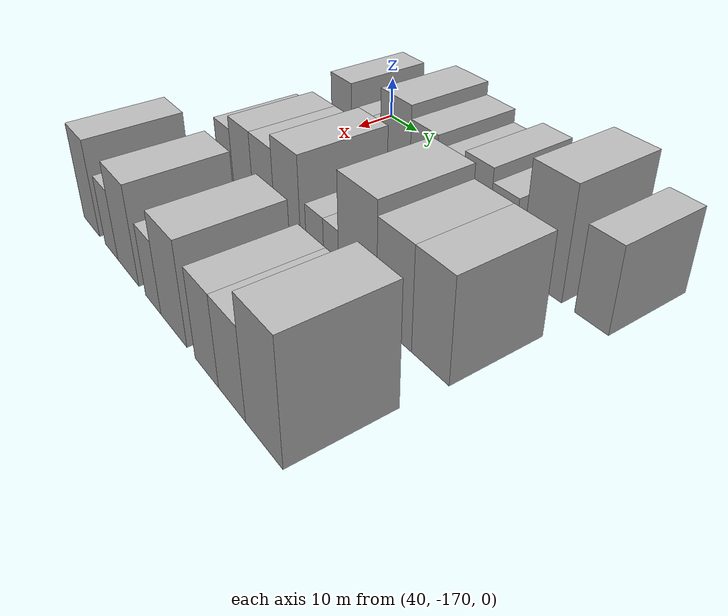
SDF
<sdf version="1.6">
 <world name="default">
  <model name="building_19">
   <static>1</static>
   <pose>50.0000 -162.3650 0 0.000000 0.000000 0.000000</pose>
   <link name="link">
    <pose>0 0 9.00 0 0 0</pose>
    <collision name="collision"><geometry><box><size>20.0000 7.9368 18.0000</size></box></geometry></collision>
    <visual name="visual">
     <cast_shadows>0</cast_shadows>
     <geometry><box><size>20.0000 7.9368 18.0000</size></box></geometry>
     <material>
      <script>
       <uri>model://HANNAS_wall/materials/scripts</uri>
       <uri>model://HANNAS_wall/materials/textures</uri>
       <name>vrc/HANNAS_wall</name>
      </script>
     </material>
    </visual>
   </link>
  </model>
  <model name="building_20">
   <static>1</static>
   <pose>50.0000 -155.6761 0 0.000000 0.000000 0.000000</pose>
   <link name="link">
    <pose>0 0 6.00 0 0 0</pose>
    <collision name="collision"><geometry><box><size>20.0000 5.4409 12.0000</size></box></geometry></collision>
    <visual name="visual">
     <cast_shadows>0</cast_shadows>
     <geometry><box><size>20.0000 5.4409 12.0000</size></box></geometry>
     <material>
      <script>
       <uri>model://HANNAS_wall/materials/scripts</uri>
       <uri>model://HANNAS_wall/materials/textures</uri>
       <name>vrc/HANNAS_wall</name>
      </script>
     </material>
    </visual>
   </link>
  </model>
  <model name="building_21">
   <static>1</static>
   <pose>50.0000 -150.2887 0 0.000000 0.000000 0.000000</pose>
   <link name="link">
    <pose>0 0 6.00 0 0 0</pose>
    <collision name="collision"><geometry><box><size>20.0000 5.3338 12.0000</size></box></geometry></collision>
    <visual name="visual">
     <cast_shadows>0</cast_shadows>
     <geometry><box><size>20.0000 5.3338 12.0000</size></box></geometry>
     <material>
      <script>
       <uri>model://HANNAS_wall/materials/scripts</uri>
       <uri>model://HANNAS_wall/materials/textures</uri>
       <name>vrc/HANNAS_wall</name>
      </script>
     </material>
    </visual>
   </link>
  </model>
  <model name="building_22">
   <static>1</static>
   <pose>50.0000 -142.4901 0 0.000000 0.000000 0.000000</pose>
   <link name="link">
    <pose>0 0 10.50 0 0 0</pose>
    <collision name="collision"><geometry><box><size>20.0000 10.2634 21.0000</size></box></geometry></collision>
    <visual name="visual">
     <cast_shadows>0</cast_shadows>
     <geometry><box><size>20.0000 10.2634 21.0000</size></box></geometry>
     <material>
      <script>
       <uri>model://HANNAS_wall/materials/scripts</uri>
       <uri>model://HANNAS_wall/materials/textures</uri>
       <name>vrc/HANNAS_wall</name>
      </script>
     </material>
    </visual>
   </link>
  </model>
  <model name="building_23">
   <static>1</static>
   <pose>50.0000 -133.1389 0 0.000000 0.000000 0.000000</pose>
   <link name="link">
    <pose>0 0 9.00 0 0 0</pose>
    <collision name="collision"><geometry><box><size>20.0000 8.4390 18.0000</size></box></geometry></collision>
    <visual name="visual">
     <cast_shadows>0</cast_shadows>
     <geometry><box><size>20.0000 8.4390 18.0000</size></box></geometry>
     <material>
      <script>
       <uri>model://HANNAS_wall/materials/scripts</uri>
       <uri>model://HANNAS_wall/materials/textures</uri>
       <name>vrc/HANNAS_wall</name>
      </script>
     </material>
    </visual>
   </link>
  </model>
  <model name="building_24">
   <static>1</static>
   <pose>50.0000 -125.5603 0 0.000000 0.000000 0.000000</pose>
   <link name="link">
    <pose>0 0 7.50 0 0 0</pose>
    <collision name="collision"><geometry><box><size>20.0000 6.7183 15.0000</size></box></geometry></collision>
    <visual name="visual">
     <cast_shadows>0</cast_shadows>
     <geometry><box><size>20.0000 6.7183 15.0000</size></box></geometry>
     <material>
      <script>
       <uri>model://HANNAS_wall/materials/scripts</uri>
       <uri>model://HANNAS_wall/materials/textures</uri>
       <name>vrc/HANNAS_wall</name>
      </script>
     </material>
    </visual>
   </link>
  </model>
  <model name="building_25">
   <static>1</static>
   <pose>50.0000 -117.3013 0 0.000000 0.000000 0.000000</pose>
   <link name="link">
    <pose>0 0 9.00 0 0 0</pose>
    <collision name="collision"><geometry><box><size>20.0000 7.7996 18.0000</size></box></geometry></collision>
    <visual name="visual">
     <cast_shadows>0</cast_shadows>
     <geometry><box><size>20.0000 7.7996 18.0000</size></box></geometry>
     <material>
      <script>
       <uri>model://HANNAS_wall/materials/scripts</uri>
       <uri>model://HANNAS_wall/materials/textures</uri>
       <name>vrc/HANNAS_wall</name>
      </script>
     </material>
    </visual>
   </link>
  </model>
  <model name="building_26">
   <static>1</static>
   <pose>50.0000 -109.9660 0 0.000000 0.000000 0.000000</pose>
   <link name="link">
    <pose>0 0 7.50 0 0 0</pose>
    <collision name="collision"><geometry><box><size>20.0000 6.8709 15.0000</size></box></geometry></collision>
    <visual name="visual">
     <cast_shadows>0</cast_shadows>
     <geometry><box><size>20.0000 6.8709 15.0000</size></box></geometry>
     <material>
      <script>
       <uri>model://HANNAS_wall/materials/scripts</uri>
       <uri>model://HANNAS_wall/materials/textures</uri>
       <name>vrc/HANNAS_wall</name>
      </script>
     </material>
    </visual>
   </link>
  </model>
  <model name="building_27">
   <static>1</static>
   <pose>50.0000 -99.3671 0 0.000000 0.000000 0.000000</pose>
   <link name="link">
    <pose>0 0 12.00 0 0 0</pose>
    <collision name="collision"><geometry><box><size>20.0000 10.3270 24.0000</size></box></geometry></collision>
    <visual name="visual">
     <cast_shadows>0</cast_shadows>
     <geometry><box><size>20.0000 10.3270 24.0000</size></box></geometry>
     <material>
      <script>
       <uri>model://HANNAS_wall/materials/scripts</uri>
       <uri>model://HANNAS_wall/materials/textures</uri>
       <name>vrc/HANNAS_wall</name>
      </script>
     </material>
    </visual>
   </link>
  </model>
  <model name="building_28">
   <static>1</static>
   <pose>50.0000 -87.4475 0 0.000000 0.000000 0.000000</pose>
   <link name="link">
    <pose>0 0 9.00 0 0 0</pose>
    <collision name="collision"><geometry><box><size>20.0000 7.5122 18.0000</size></box></geometry></collision>
    <visual name="visual">
     <cast_shadows>0</cast_shadows>
     <geometry><box><size>20.0000 7.5122 18.0000</size></box></geometry>
     <material>
      <script>
       <uri>model://HANNAS_wall/materials/scripts</uri>
       <uri>model://HANNAS_wall/materials/textures</uri>
       <name>vrc/HANNAS_wall</name>
      </script>
     </material>
    </visual>
   </link>
  </model>
  <model name="building_96">
   <static>1</static>
   <pose>79.0000 -163.0501 0 0.000000 0.000000 0.000000</pose>
   <link name="link">
    <pose>0 0 7.50 0 0 0</pose>
    <collision name="collision"><geometry><box><size>20.0000 6.7012 15.0000</size></box></geometry></collision>
    <visual name="visual">
     <cast_shadows>0</cast_shadows>
     <geometry><box><size>20.0000 6.7012 15.0000</size></box></geometry>
     <material>
      <script>
       <uri>model://HANNAS_wall/materials/scripts</uri>
       <uri>model://HANNAS_wall/materials/textures</uri>
       <name>vrc/HANNAS_wall</name>
      </script>
     </material>
    </visual>
   </link>
  </model>
  <model name="building_97">
   <static>1</static>
   <pose>79.0000 -155.4418 0 0.000000 0.000000 0.000000</pose>
   <link name="link">
    <pose>0 0 9.00 0 0 0</pose>
    <collision name="collision"><geometry><box><size>20.0000 8.5153 18.0000</size></box></geometry></collision>
    <visual name="visual">
     <cast_shadows>0</cast_shadows>
     <geometry><box><size>20.0000 8.5153 18.0000</size></box></geometry>
     <material>
      <script>
       <uri>model://HANNAS_wall/materials/scripts</uri>
       <uri>model://HANNAS_wall/materials/textures</uri>
       <name>vrc/HANNAS_wall</name>
      </script>
     </material>
    </visual>
   </link>
  </model>
  <model name="building_98">
   <static>1</static>
   <pose>79.0000 -146.8938 0 0.000000 0.000000 0.000000</pose>
   <link name="link">
    <pose>0 0 9.00 0 0 0</pose>
    <collision name="collision"><geometry><box><size>20.0000 8.5806 18.0000</size></box></geometry></collision>
    <visual name="visual">
     <cast_shadows>0</cast_shadows>
     <geometry><box><size>20.0000 8.5806 18.0000</size></box></geometry>
     <material>
      <script>
       <uri>model://HANNAS_wall/materials/scripts</uri>
       <uri>model://HANNAS_wall/materials/textures</uri>
       <name>vrc/HANNAS_wall</name>
      </script>
     </material>
    </visual>
   </link>
  </model>
  <model name="building_99">
   <static>1</static>
   <pose>79.0000 -137.8157 0 0.000000 0.000000 0.000000</pose>
   <link name="link">
    <pose>0 0 10.50 0 0 0</pose>
    <collision name="collision"><geometry><box><size>20.0000 9.5756 21.0000</size></box></geometry></collision>
    <visual name="visual">
     <cast_shadows>0</cast_shadows>
     <geometry><box><size>20.0000 9.5756 21.0000</size></box></geometry>
     <material>
      <script>
       <uri>model://HANNAS_wall/materials/scripts</uri>
       <uri>model://HANNAS_wall/materials/textures</uri>
       <name>vrc/HANNAS_wall</name>
      </script>
     </material>
    </visual>
   </link>
  </model>
  <model name="building_100">
   <static>1</static>
   <pose>79.0000 -128.0431 0 0.000000 0.000000 0.000000</pose>
   <link name="link">
    <pose>0 0 6.00 0 0 0</pose>
    <collision name="collision"><geometry><box><size>20.0000 5.9696 12.0000</size></box></geometry></collision>
    <visual name="visual">
     <cast_shadows>0</cast_shadows>
     <geometry><box><size>20.0000 5.9696 12.0000</size></box></geometry>
     <material>
      <script>
       <uri>model://HANNAS_wall/materials/scripts</uri>
       <uri>model://HANNAS_wall/materials/textures</uri>
       <name>vrc/HANNAS_wall</name>
      </script>
     </material>
    </visual>
   </link>
  </model>
  <model name="building_101">
   <static>1</static>
   <pose>79.0000 -122.6433 0 0.000000 0.000000 0.000000</pose>
   <link name="link">
    <pose>0 0 6.00 0 0 0</pose>
    <collision name="collision"><geometry><box><size>20.0000 4.8300 12.0000</size></box></geometry></collision>
    <visual name="visual">
     <cast_shadows>0</cast_shadows>
     <geometry><box><size>20.0000 4.8300 12.0000</size></box></geometry>
     <material>
      <script>
       <uri>model://HANNAS_wall/materials/scripts</uri>
       <uri>model://HANNAS_wall/materials/textures</uri>
       <name>vrc/HANNAS_wall</name>
      </script>
     </material>
    </visual>
   </link>
  </model>
  <model name="building_102">
   <static>1</static>
   <pose>79.0000 -114.5155 0 0.000000 0.000000 0.000000</pose>
   <link name="link">
    <pose>0 0 12.00 0 0 0</pose>
    <collision name="collision"><geometry><box><size>20.0000 11.4256 24.0000</size></box></geometry></collision>
    <visual name="visual">
     <cast_shadows>0</cast_shadows>
     <geometry><box><size>20.0000 11.4256 24.0000</size></box></geometry>
     <material>
      <script>
       <uri>model://HANNAS_wall/materials/scripts</uri>
       <uri>model://HANNAS_wall/materials/textures</uri>
       <name>vrc/HANNAS_wall</name>
      </script>
     </material>
    </visual>
   </link>
  </model>
  <model name="building_103">
   <static>1</static>
   <pose>79.0000 -104.0372 0 0.000000 0.000000 0.000000</pose>
   <link name="link">
    <pose>0 0 10.50 0 0 0</pose>
    <collision name="collision"><geometry><box><size>20.0000 9.5311 21.0000</size></box></geometry></collision>
    <visual name="visual">
     <cast_shadows>0</cast_shadows>
     <geometry><box><size>20.0000 9.5311 21.0000</size></box></geometry>
     <material>
      <script>
       <uri>model://HANNAS_wall/materials/scripts</uri>
       <uri>model://HANNAS_wall/materials/textures</uri>
       <name>vrc/HANNAS_wall</name>
      </script>
     </material>
    </visual>
   </link>
  </model>
  <model name="building_104">
   <static>1</static>
   <pose>79.0000 -94.5665 0 0.000000 0.000000 0.000000</pose>
   <link name="link">
    <pose>0 0 10.50 0 0 0</pose>
    <collision name="collision"><geometry><box><size>20.0000 9.4101 21.0000</size></box></geometry></collision>
    <visual name="visual">
     <cast_shadows>0</cast_shadows>
     <geometry><box><size>20.0000 9.4101 21.0000</size></box></geometry>
     <material>
      <script>
       <uri>model://HANNAS_wall/materials/scripts</uri>
       <uri>model://HANNAS_wall/materials/textures</uri>
       <name>vrc/HANNAS_wall</name>
      </script>
     </material>
    </visual>
   </link>
  </model>
  <model name="building_168">
   <static>1</static>
   <pose>108.0000 -164.6098 0 0.000000 0.000000 0.000000</pose>
   <link name="link">
    <pose>0 0 10.50 0 0 0</pose>
    <collision name="collision"><geometry><box><size>20.0000 8.6089 21.0000</size></box></geometry></collision>
    <visual name="visual">
     <cast_shadows>0</cast_shadows>
     <geometry><box><size>20.0000 8.6089 21.0000</size></box></geometry>
     <material>
      <script>
       <uri>model://HANNAS_wall/materials/scripts</uri>
       <uri>model://HANNAS_wall/materials/textures</uri>
       <name>vrc/HANNAS_wall</name>
      </script>
     </material>
    </visual>
   </link>
  </model>
  <model name="building_169">
   <static>1</static>
   <pose>108.0000 -154.0557 0 0.000000 0.000000 0.000000</pose>
   <link name="link">
    <pose>0 0 7.50 0 0 0</pose>
    <collision name="collision"><geometry><box><size>20.0000 6.4994 15.0000</size></box></geometry></collision>
    <visual name="visual">
     <cast_shadows>0</cast_shadows>
     <geometry><box><size>20.0000 6.4994 15.0000</size></box></geometry>
     <material>
      <script>
       <uri>model://HANNAS_wall/materials/scripts</uri>
       <uri>model://HANNAS_wall/materials/textures</uri>
       <name>vrc/HANNAS_wall</name>
      </script>
     </material>
    </visual>
   </link>
  </model>
  <model name="building_170">
   <static>1</static>
   <pose>108.0000 -145.8659 0 0.000000 0.000000 0.000000</pose>
   <link name="link">
    <pose>0 0 10.50 0 0 0</pose>
    <collision name="collision"><geometry><box><size>20.0000 9.8801 21.0000</size></box></geometry></collision>
    <visual name="visual">
     <cast_shadows>0</cast_shadows>
     <geometry><box><size>20.0000 9.8801 21.0000</size></box></geometry>
     <material>
      <script>
       <uri>model://HANNAS_wall/materials/scripts</uri>
       <uri>model://HANNAS_wall/materials/textures</uri>
       <name>vrc/HANNAS_wall</name>
      </script>
     </material>
    </visual>
   </link>
  </model>
  <model name="building_171">
   <static>1</static>
   <pose>108.0000 -134.6299 0 0.000000 0.000000 0.000000</pose>
   <link name="link">
    <pose>0 0 7.50 0 0 0</pose>
    <collision name="collision"><geometry><box><size>20.0000 6.5918 15.0000</size></box></geometry></collision>
    <visual name="visual">
     <cast_shadows>0</cast_shadows>
     <geometry><box><size>20.0000 6.5918 15.0000</size></box></geometry>
     <material>
      <script>
       <uri>model://HANNAS_wall/materials/scripts</uri>
       <uri>model://HANNAS_wall/materials/textures</uri>
       <name>vrc/HANNAS_wall</name>
      </script>
     </material>
    </visual>
   </link>
  </model>
  <model name="building_172">
   <static>1</static>
   <pose>108.0000 -126.2135 0 0.000000 0.000000 0.000000</pose>
   <link name="link">
    <pose>0 0 10.50 0 0 0</pose>
    <collision name="collision"><geometry><box><size>20.0000 10.2410 21.0000</size></box></geometry></collision>
    <visual name="visual">
     <cast_shadows>0</cast_shadows>
     <geometry><box><size>20.0000 10.2410 21.0000</size></box></geometry>
     <material>
      <script>
       <uri>model://HANNAS_wall/materials/scripts</uri>
       <uri>model://HANNAS_wall/materials/textures</uri>
       <name>vrc/HANNAS_wall</name>
      </script>
     </material>
    </visual>
   </link>
  </model>
  <model name="building_173">
   <static>1</static>
   <pose>108.0000 -114.0079 0 0.000000 0.000000 0.000000</pose>
   <link name="link">
    <pose>0 0 9.00 0 0 0</pose>
    <collision name="collision"><geometry><box><size>20.0000 8.1703 18.0000</size></box></geometry></collision>
    <visual name="visual">
     <cast_shadows>0</cast_shadows>
     <geometry><box><size>20.0000 8.1703 18.0000</size></box></geometry>
     <material>
      <script>
       <uri>model://HANNAS_wall/materials/scripts</uri>
       <uri>model://HANNAS_wall/materials/textures</uri>
       <name>vrc/HANNAS_wall</name>
      </script>
     </material>
    </visual>
   </link>
  </model>
  <model name="building_174">
   <static>1</static>
   <pose>108.0000 -105.6132 0 0.000000 0.000000 0.000000</pose>
   <link name="link">
    <pose>0 0 9.00 0 0 0</pose>
    <collision name="collision"><geometry><box><size>20.0000 8.6191 18.0000</size></box></geometry></collision>
    <visual name="visual">
     <cast_shadows>0</cast_shadows>
     <geometry><box><size>20.0000 8.6191 18.0000</size></box></geometry>
     <material>
      <script>
       <uri>model://HANNAS_wall/materials/scripts</uri>
       <uri>model://HANNAS_wall/materials/textures</uri>
       <name>vrc/HANNAS_wall</name>
      </script>
     </material>
    </visual>
   </link>
  </model>
  <model name="building_175">
   <static>1</static>
   <pose>108.0000 -95.9582 0 0.000000 0.000000 0.000000</pose>
   <link name="link">
    <pose>0 0 12.00 0 0 0</pose>
    <collision name="collision"><geometry><box><size>20.0000 10.6909 24.0000</size></box></geometry></collision>
    <visual name="visual">
     <cast_shadows>0</cast_shadows>
     <geometry><box><size>20.0000 10.6909 24.0000</size></box></geometry>
     <material>
      <script>
       <uri>model://HANNAS_wall/materials/scripts</uri>
       <uri>model://HANNAS_wall/materials/textures</uri>
       <name>vrc/HANNAS_wall</name>
      </script>
     </material>
    </visual>
   </link>
  </model>
 </world>
</sdf>
